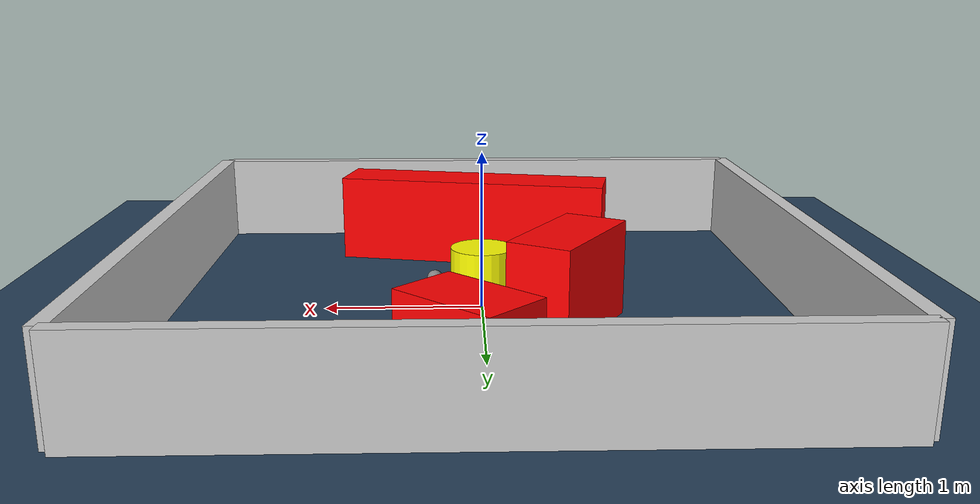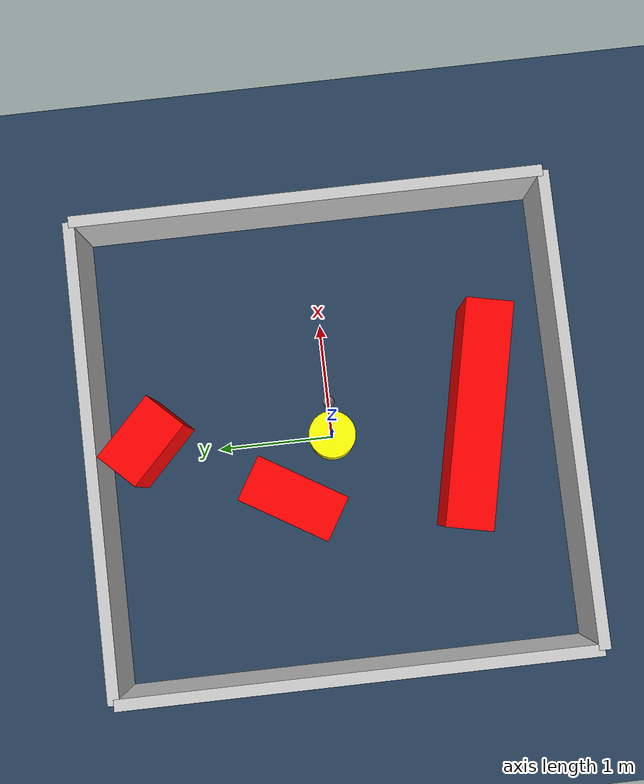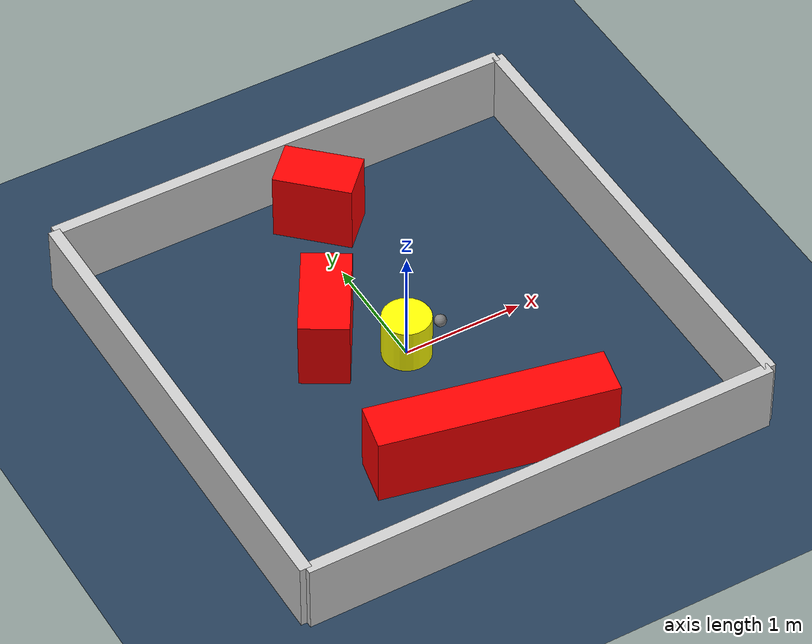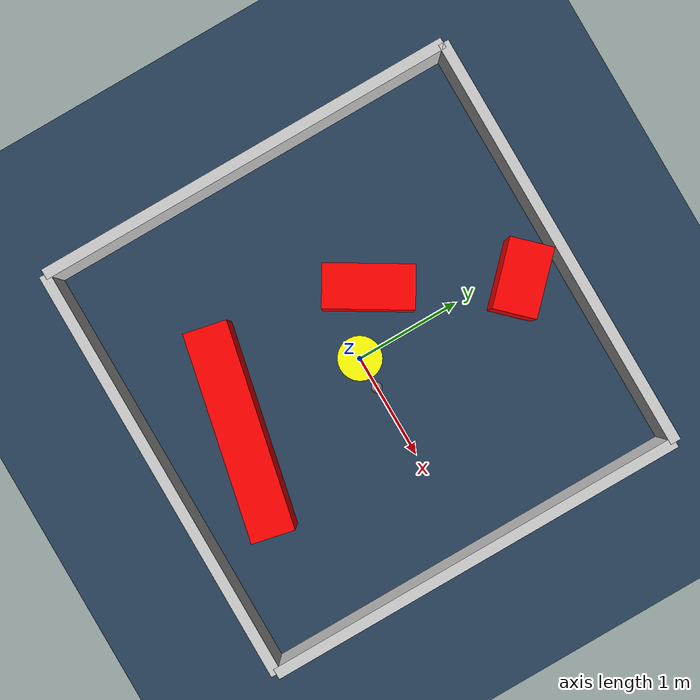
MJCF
<?xml version="1.0" ?>
<mujoco model="generated_environment">
  <option timestep="0.01" integrator="RK4" cone="elliptic"/>
  <default>
    <geom density="1"/>
  </default>
  <asset>
    <texture builtin="gradient" height="3072" rgb1="0.3 0.5 0.7" rgb2="0 0 0" type="skybox" width="512"/>
    <texture builtin="checker" height="300" mark="edge" markrgb="0.8 0.8 0.8" name="groundplane" rgb1="0.2 0.3 0.4" rgb2="0.1 0.2 0.3" type="2d" width="300"/>
    <material name="groundplane" reflectance="0.2" texrepeat="5 5" texture="groundplane" texuniform="true"/>
    <material name="robot" rgba="0.0 1.0 0.0 1"/>
  </asset>
  <worldbody>
    <light dir="0 0 -1" directional="true" pos="0 0 1.5"/>
    <geom condim="4" friction="1.0 0.005 0.001" material="groundplane" name="floor" size="0 0 0.05" type="plane"/>
    <body name="walls">
      <geom name="wall_1" condim="4" pos="-2.0 0.0 0.3" rgba="0.800000011920929 0.800000011920929 0.800000011920929 1.0" size="0.05 2.0 0.3" type="box"/>
      <geom name="wall_2" condim="4" pos="2.0 0.0 0.3" rgba="0.800000011920929 0.800000011920929 0.800000011920929 1.0" size="0.05 2.0 0.3" type="box"/>
      <geom name="wall_3" condim="4" pos="0.0 -2.0 0.3" rgba="0.800000011920929 0.800000011920929 0.800000011920929 1.0" size="2.0 0.05 0.3" type="box"/>
      <geom name="wall_4" condim="4" pos="0.0 2.0 0.3" rgba="0.800000011920929 0.800000011920929 0.800000011920929 1.0" size="2.0 0.05 0.3" type="box"/>
    </body>
    <body name="robot">
      <joint name="joint_x" type="slide" pos="0 0 0" axis="1 0 0"/>
      <joint name="joint_y" type="slide" pos="0 0 0" axis="0 1 0"/>
      <geom name="robot" type="sphere" pos="0.3 0.0 0.2" size="0.05" mass="5." friction="1.0 0.005 0.0001" condim="4" rgba="0.5 0.5 0.5 1.0"/>
      <site name="sensor_ball"/>
    </body>
    <body name="obstacle_movable_1">
      <geom name="obstacle_movable_1" condim="4" pos="0.0 0.0 0.2" euler="0 0 0.0" friction="1.0 0.005 0.001" rgba="1.0 1.0 0.0 1.0" size="0.2 0.2 0.0" type="cylinder" mass="0.1"/>
      <joint type="free"/>
    </body>
    <body name="obstacle_2_static">
      <geom name="obstacle_2_static" condim="4" pos="0.024374287702837005 -1.2272935443389463 0.3" euler="0 0 167.9470482398065" friction="1.0 0.005 0.001" rgba="1 0 0 1" size="0.9577209772186284 0.2 0.3" type="box"/>
    </body>
    <body name="obstacle_3_static">
      <geom name="obstacle_3_static" condim="4" pos="0.10948732805628048 1.5750963775887563 0.3" euler="0 0 135.87963751458787" friction="1.0 0.005 0.001" rgba="1 0 0 1" size="0.3228324346786698 0.2 0.3" type="box"/>
    </body>
    <body name="obstacle_4_static">
      <geom name="obstacle_4_static" condim="4" pos="-0.501329402145263 0.37946265484396347 0.3" euler="0 0 238.97698478699743" friction="1.0 0.005 0.001" rgba="1 0 0 1" size="0.40896233582799685 0.2 0.3" type="box"/>
    </body>
  </worldbody>
  <actuator>
    <motor name="actuator_x" joint="joint_x" gear="1" ctrlrange="-1 1"/>
    <motor name="actuator_y" joint="joint_y" gear="1" ctrlrange="-1 1"/>
  </actuator>
</mujoco>
